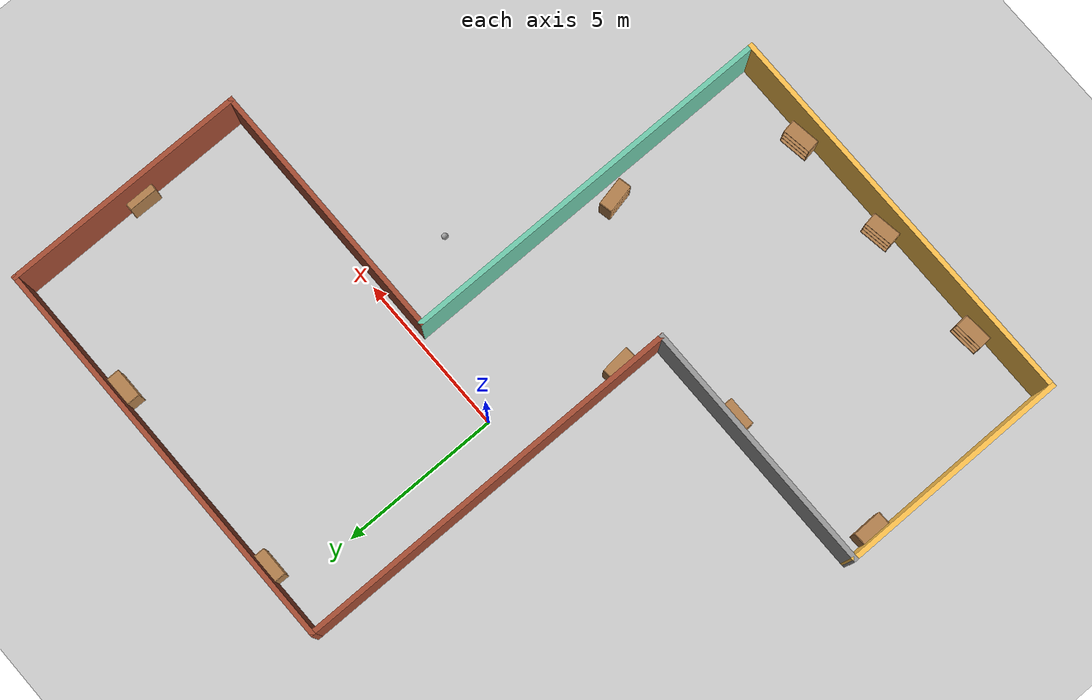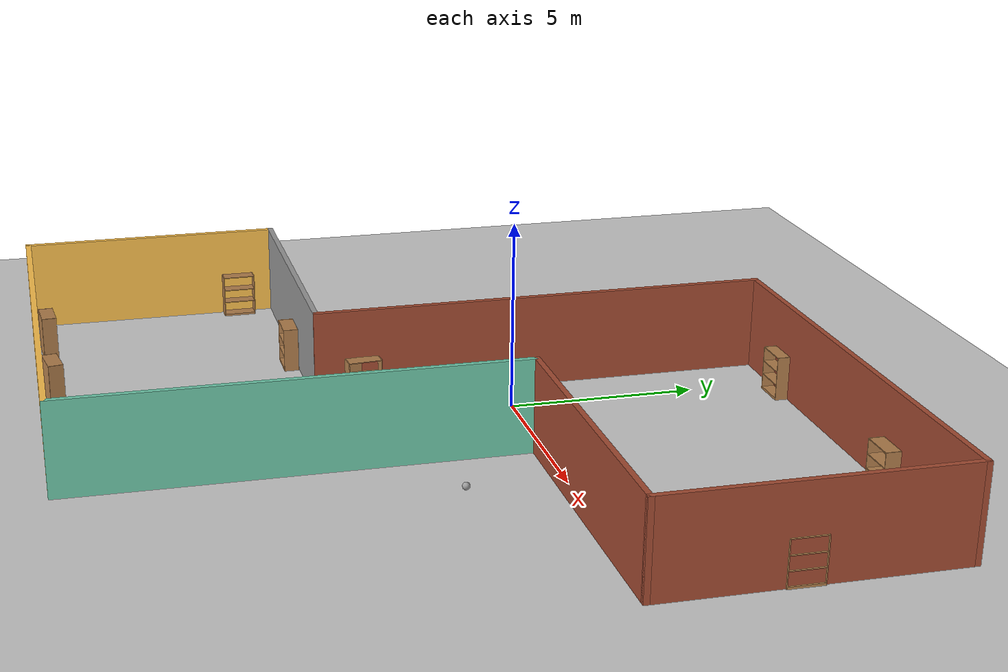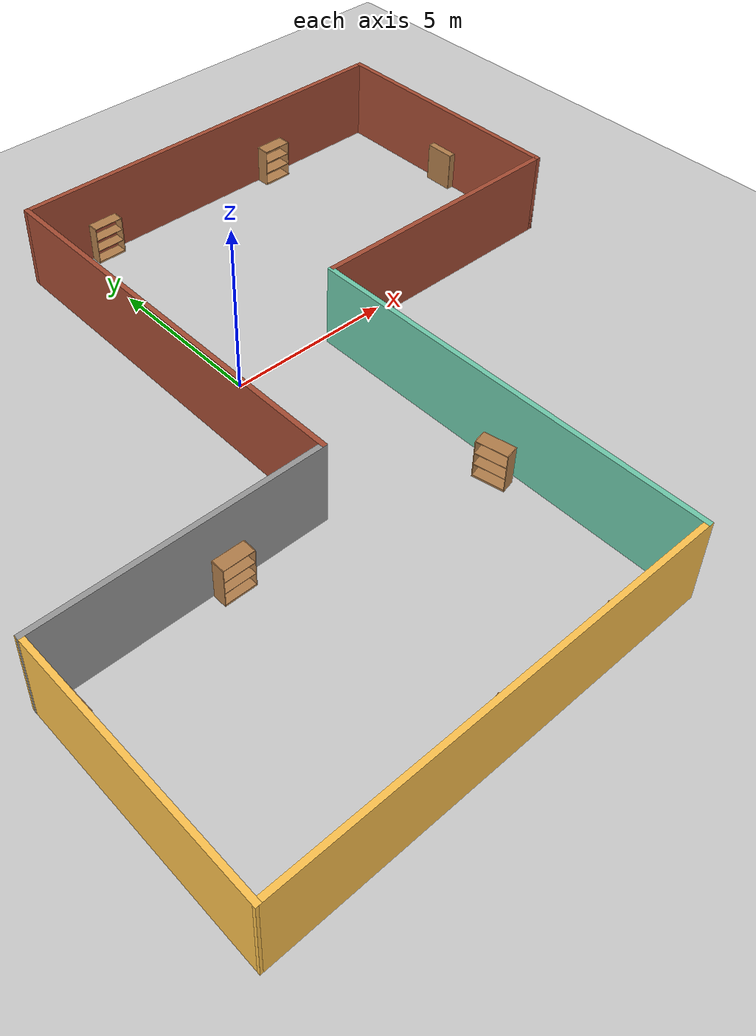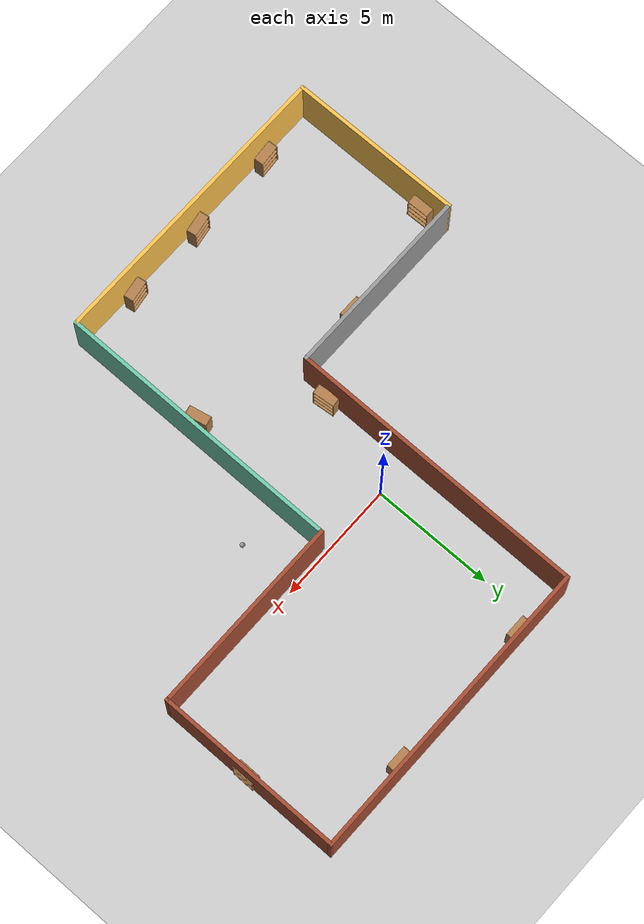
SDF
<sdf version="1.6">
 <world name="default">
  <plugin name="welcome_message" filename="libwelcome_message.so"/>
  <light name="sun" type="directional">
   <pose>0 0 10 0 -0 0</pose>
   <diffuse>0.8 0.8 0.8 1</diffuse>
   <specular>0.2 0.2 0.2 1</specular>
   <attenuation>
    <range>1000</range>
    <constant>0.9</constant>
    <linear>0.01</linear>
    <quadratic>0.001</quadratic>
   </attenuation>
   <direction>-0.5 0.1 -0.9</direction>
  </light>
  <model name="ground_plane">
   <static>1</static>
   <link name="link">
    <collision name="collision">
     <geometry><plane><normal>0 0 1</normal><size>100 100</size></plane></geometry>
     <surface>
      <contact><collide_bitmask>65535</collide_bitmask></contact>
      <friction><ode><mu>100</mu><mu2>50</mu2></ode></friction>
     </surface>
    </collision>
    <visual name="visual">
     <cast_shadows>0</cast_shadows>
     <geometry><plane><normal>0 0 1</normal><size>100 100</size></plane></geometry>
     <material>
      <script><uri>file://media/materials/scripts/gazebo.material</uri><name>Gazebo/Grey</name></script>
     </material>
    </visual>
   </link>
  </model>
  <gravity>0 0 -9.8</gravity>
  <magnetic_field>6e-06 2.3e-05 -4.2e-05</magnetic_field>
  <atmosphere type="adiabatic"/>
  <physics name="default_physics" default="0" type="ode">
   <max_step_size>0.001</max_step_size>
   <real_time_factor>1</real_time_factor>
   <real_time_update_rate>1000</real_time_update_rate>
  </physics>
  <scene><ambient>0.4 0.4 0.4 1</ambient><background>0.7 0.7 0.7 1</background><shadows>1</shadows></scene>
  <spherical_coordinates>
   <surface_model>EARTH_WGS84</surface_model>
   <latitude_deg>0</latitude_deg>
   <longitude_deg>0</longitude_deg>
   <elevation>0</elevation>
   <heading_deg>0</heading_deg>
  </spherical_coordinates>
  <model name="Building">
   <pose>0.87968 -2.35565 0 0 -0 0</pose>
   <link name="Wall_1">
    <collision name="Wall_1_Collision">
     <geometry><box><size>8.024 0.15 2.5</size></box></geometry>
     <pose>0 0 1.25 0 -0 0</pose>
    </collision>
    <visual name="Wall_1_Visual">
     <pose>0 0 1.25 0 -0 0</pose>
     <geometry><box><size>8.024 0.15 2.5</size></box></geometry>
     <material>
      <script><uri>file://media/materials/scripts/gazebo.material</uri><name>Gazebo/Grey</name></script>
      <ambient>1 1 1 1</ambient>
     </material>
     <meta><layer>0</layer></meta>
    </visual>
    <pose>-6.30551 -2.59086 0 0 -0 3.14159</pose>
   </link>
   <link name="Wall_2">
    <collision name="Wall_2_Collision">
     <geometry><box><size>7.285 0.15 2.5</size></box></geometry>
     <pose>0 0 1.25 0 -0 0</pose>
    </collision>
    <visual name="Wall_2_Visual">
     <pose>0 0 1.25 0 -0 0</pose>
     <geometry><box><size>7.285 0.15 2.5</size></box></geometry>
     <material>
      <script><uri>file://media/materials/scripts/gazebo.material</uri><name>Gazebo/Grey</name></script>
      <ambient>1 0.764706 0.305882 1</ambient>
     </material>
     <meta><layer>0</layer></meta>
    </visual>
    <pose>-10.2248 -6.15832 0 0 0 -1.56584</pose>
   </link>
   <link name="Wall_3">
    <collision name="Wall_3_Collision">
     <geometry><box><size>12.5 0.15 2.5</size></box></geometry>
     <pose>0 0 1.25 0 -0 0</pose>
    </collision>
    <visual name="Wall_3_Visual">
     <pose>0 0 1.25 0 -0 0</pose>
     <geometry><box><size>12.5 0.15 2.5</size></box></geometry>
     <material>
      <script><uri>file://media/materials/scripts/gazebo.material</uri><name>Gazebo/Grey</name></script>
      <ambient>1 0.764706 0.305882 1</ambient>
     </material>
     <meta><layer>0</layer></meta>
    </visual>
    <pose>-4.03216 -9.72578 0 0 -0 0</pose>
   </link>
   <link name="Wall_4">
    <collision name="Wall_4_Collision">
     <geometry><box><size>12 0.15 2.5</size></box></geometry>
     <pose>0 0 1.25 0 -0 0</pose>
    </collision>
    <visual name="Wall_4_Visual">
     <pose>0 0 1.25 0 -0 0</pose>
     <geometry><box><size>12 0.15 2.5</size></box></geometry>
     <material>
      <script><uri>file://media/materials/scripts/gazebo.material</uri><name>Gazebo/Grey</name></script>
      <ambient>0.435294 0.796078 0.67451 1</ambient>
     </material>
     <meta><layer>0</layer></meta>
    </visual>
    <pose>2.14284 -3.80078 0 0 -0 1.5708</pose>
   </link>
   <link name="Wall_5">
    <collision name="Wall_5_Collision">
     <geometry><box><size>8.25 0.15 2.5</size></box></geometry>
     <pose>0 0 1.25 0 -0 0</pose>
    </collision>
    <visual name="Wall_5_Visual">
     <pose>0 0 1.25 0 -0 0</pose>
     <geometry><box><size>8.25 0.15 2.5</size></box></geometry>
     <material>
      <script><uri>file://media/materials/scripts/gazebo.material</uri><name>Gazebo/Bricks</name></script>
      <ambient>1 1 1 1</ambient>
     </material>
     <meta><layer>0</layer></meta>
    </visual>
    <pose>6.19284 2.12422 0 0 -0 0</pose>
   </link>
   <link name="Wall_6">
    <collision name="Wall_6_Collision">
     <geometry><box><size>7.75 0.15 2.5</size></box></geometry>
     <pose>0 0 1.25 0 -0 0</pose>
    </collision>
    <visual name="Wall_6_Visual">
     <pose>0 0 1.25 0 -0 0</pose>
     <geometry><box><size>7.75 0.15 2.5</size></box></geometry>
     <material>
      <script><uri>file://media/materials/scripts/gazebo.material</uri><name>Gazebo/Bricks</name></script>
      <ambient>1 0.764706 0.305882 1</ambient>
     </material>
     <meta><layer>0</layer></meta>
    </visual>
    <pose>10.2428 5.92422 0 0 -0 1.5708</pose>
   </link>
   <link name="Wall_7">
    <collision name="Wall_7_Collision">
     <geometry><box><size>12.7504 0.15 2.5</size></box></geometry>
     <pose>0 0 1.25 0 -0 0</pose>
    </collision>
    <visual name="Wall_7_Visual">
     <pose>0 0 1.25 0 -0 0</pose>
     <geometry><box><size>12.7504 0.15 2.5</size></box></geometry>
     <material>
      <script><uri>file://media/materials/scripts/gazebo.material</uri><name>Gazebo/Bricks</name></script>
      <ambient>1 1 1 1</ambient>
     </material>
     <meta><layer>0</layer></meta>
    </visual>
    <pose>3.94267 9.72518 0 0 -0 3.14144</pose>
   </link>
   <link name="Wall_8">
    <collision name="Wall_8_Collision">
     <geometry><box><size>12.462 0.15 2.5</size></box></geometry>
     <pose>0 0 1.25 0 -0 0</pose>
    </collision>
    <visual name="Wall_8_Visual">
     <pose>0 0 1.25 0 -0 0</pose>
     <geometry><box><size>12.462 0.15 2.5</size></box></geometry>
     <material>
      <script><uri>file://media/materials/scripts/gazebo.material</uri><name>Gazebo/Bricks</name></script>
      <ambient>1 1 1 1</ambient>
     </material>
     <meta><layer>0</layer></meta>
    </visual>
    <pose>-2.35751 3.57013 0 0 0 -1.5708</pose>
   </link>
   <static>1</static>
  </model>
  <model name="bookshelf">
   <static>1</static>
   <link name="link">
    <inertial><mass>1</mass></inertial>
    <collision name="back">
     <pose>0 0.005 0.6 0 -0 0</pose>
     <geometry><box><size>0.9 0.01 1.2</size></box></geometry>
    </collision>
    <visual name="visual1">
     <pose>0 0.005 0.6 0 -0 0</pose>
     <geometry><box><size>0.9 0.01 1.2</size></box></geometry>
     <material>
      <script><uri>file://media/materials/scripts/gazebo.material</uri><name>Gazebo/Wood</name></script>
     </material>
    </visual>
    <collision name="left_side">
     <pose>0.45 -0.195 0.6 0 -0 0</pose>
     <geometry><box><size>0.02 0.4 1.2</size></box></geometry>
    </collision>
    <visual name="visual2">
     <pose>0.45 -0.195 0.6 0 -0 0</pose>
     <geometry><box><size>0.02 0.4 1.2</size></box></geometry>
     <material>
      <script><uri>file://media/materials/scripts/gazebo.material</uri><name>Gazebo/Wood</name></script>
     </material>
    </visual>
    <collision name="right_side">
     <pose>-0.45 -0.195 0.6 0 -0 0</pose>
     <geometry><box><size>0.02 0.4 1.2</size></box></geometry>
    </collision>
    <visual name="visual3">
     <pose>-0.45 -0.195 0.6 0 -0 0</pose>
     <geometry><box><size>0.02 0.4 1.2</size></box></geometry>
     <material>
      <script><uri>file://media/materials/scripts/gazebo.material</uri><name>Gazebo/Wood</name></script>
     </material>
    </visual>
    <collision name="bottom">
     <pose>0 -0.195 0.03 0 -0 0</pose>
     <geometry><box><size>0.88 0.4 0.06</size></box></geometry>
    </collision>
    <visual name="visual4">
     <pose>0 -0.195 0.03 0 -0 0</pose>
     <geometry><box><size>0.88 0.4 0.06</size></box></geometry>
     <material>
      <script><uri>file://media/materials/scripts/gazebo.material</uri><name>Gazebo/Wood</name></script>
     </material>
    </visual>
    <collision name="top">
     <pose>0 -0.195 1.19 0 -0 0</pose>
     <geometry><box><size>0.88 0.4 0.02</size></box></geometry>
    </collision>
    <visual name="visual5">
     <pose>0 -0.195 1.19 0 -0 0</pose>
     <geometry><box><size>0.88 0.4 0.02</size></box></geometry>
     <material>
      <script><uri>file://media/materials/scripts/gazebo.material</uri><name>Gazebo/Wood</name></script>
     </material>
    </visual>
    <collision name="low_shelf">
     <pose>0 -0.195 0.43 0 -0 0</pose>
     <geometry><box><size>0.88 0.4 0.02</size></box></geometry>
    </collision>
    <visual name="visual6">
     <pose>0 -0.195 0.43 0 -0 0</pose>
     <geometry><box><size>0.88 0.4 0.02</size></box></geometry>
     <material>
      <script><uri>file://media/materials/scripts/gazebo.material</uri><name>Gazebo/Wood</name></script>
     </material>
    </visual>
    <collision name="high_shelf">
     <pose>0 -0.195 0.8 0 -0 0</pose>
     <geometry><box><size>0.88 0.4 0.02</size></box></geometry>
    </collision>
    <visual name="visual7">
     <pose>0 -0.195 0.8 0 -0 0</pose>
     <geometry><box><size>0.88 0.4 0.02</size></box></geometry>
     <material>
      <script><uri>file://media/materials/scripts/gazebo.material</uri><name>Gazebo/Wood</name></script>
     </material>
    </visual>
   </link>
   <pose>-4.36599 -5.04739 0 0 -0 0</pose>
  </model>
  <model name="my_ball">
   <link name="link_0">
    <inertial>
     <mass>1</mass>
     <inertia><ixx>0.1</ixx><ixy>0</ixy><ixz>0</ixz><iyy>0.1</iyy><iyz>0</iyz><izz>0.1</izz></inertia>
    </inertial>
    <visual name="visual">
     <geometry><sphere><radius>0.1</radius></sphere></geometry>
     <material>
      <lighting>1</lighting>
      <script><uri>file://media/materials/scripts/gazebo.material</uri><name>Gazebo/Grey</name></script>
      <shader type="pixel"><normal_map>__default__</normal_map></shader>
      <ambient>1 1 1 1</ambient>
      <diffuse>1 1 1 1</diffuse>
      <specular>1 1 1 1</specular>
      <emissive>1 1 1 1</emissive>
     </material>
    </visual>
    <collision name="collision">
     <geometry><sphere><radius>0.1</radius></sphere></geometry>
     <surface>
      <friction>
       <ode><mu>1</mu><mu2>1</mu2><fdir1>0 0 0</fdir1><slip1>0</slip1><slip2>0</slip2></ode>
       <torsional>
        <coefficient>1</coefficient>
        <patch_radius>0</patch_radius>
        <surface_radius>0</surface_radius>
        <use_patch_radius>1</use_patch_radius>
        <ode><slip>0</slip></ode>
       </torsional>
      </friction>
      <bounce><restitution_coefficient>0</restitution_coefficient><threshold>1e+06</threshold></bounce>
      <contact>
       <collide_without_contact>0</collide_without_contact>
       <collide_without_contact_bitmask>1</collide_without_contact_bitmask>
       <collide_bitmask>1</collide_bitmask>
       <ode>
        <soft_cfm>0</soft_cfm>
        <soft_erp>0.2</soft_erp>
        <kp>1e+13</kp>
        <kd>1</kd>
        <max_vel>0.01</max_vel>
        <min_depth>0</min_depth>
       </ode>
       <bullet>
        <split_impulse>1</split_impulse>
        <split_impulse_penetration_threshold>-0.01</split_impulse_penetration_threshold>
        <soft_cfm>0</soft_cfm>
        <soft_erp>0.2</soft_erp>
        <kp>1e+13</kp>
        <kd>1</kd>
       </bullet>
      </contact>
     </surface>
    </collision>
   </link>
   <static>0</static>
   <pose>4.81134 -2.46501 0.1 0 -0 0</pose>
  </model>
  <model name="bookshelf_clone">
   <static>1</static>
   <link name="link">
    <inertial><mass>1</mass></inertial>
    <collision name="back">
     <pose>0 0.005 0.6 0 -0 0</pose>
     <geometry><box><size>0.9 0.01 1.2</size></box></geometry>
    </collision>
    <visual name="visual1">
     <pose>0 0.005 0.6 0 -0 0</pose>
     <geometry><box><size>0.9 0.01 1.2</size></box></geometry>
     <material>
      <script><uri>file://media/materials/scripts/gazebo.material</uri><name>Gazebo/Wood</name></script>
     </material>
    </visual>
    <collision name="left_side">
     <pose>0.45 -0.195 0.6 0 -0 0</pose>
     <geometry><box><size>0.02 0.4 1.2</size></box></geometry>
    </collision>
    <visual name="visual2">
     <pose>0.45 -0.195 0.6 0 -0 0</pose>
     <geometry><box><size>0.02 0.4 1.2</size></box></geometry>
     <material>
      <script><uri>file://media/materials/scripts/gazebo.material</uri><name>Gazebo/Wood</name></script>
     </material>
    </visual>
    <collision name="right_side">
     <pose>-0.45 -0.195 0.6 0 -0 0</pose>
     <geometry><box><size>0.02 0.4 1.2</size></box></geometry>
    </collision>
    <visual name="visual3">
     <pose>-0.45 -0.195 0.6 0 -0 0</pose>
     <geometry><box><size>0.02 0.4 1.2</size></box></geometry>
     <material>
      <script><uri>file://media/materials/scripts/gazebo.material</uri><name>Gazebo/Wood</name></script>
     </material>
    </visual>
    <collision name="bottom">
     <pose>0 -0.195 0.03 0 -0 0</pose>
     <geometry><box><size>0.88 0.4 0.06</size></box></geometry>
    </collision>
    <visual name="visual4">
     <pose>0 -0.195 0.03 0 -0 0</pose>
     <geometry><box><size>0.88 0.4 0.06</size></box></geometry>
     <material>
      <script><uri>file://media/materials/scripts/gazebo.material</uri><name>Gazebo/Wood</name></script>
     </material>
    </visual>
    <collision name="top">
     <pose>0 -0.195 1.19 0 -0 0</pose>
     <geometry><box><size>0.88 0.4 0.02</size></box></geometry>
    </collision>
    <visual name="visual5">
     <pose>0 -0.195 1.19 0 -0 0</pose>
     <geometry><box><size>0.88 0.4 0.02</size></box></geometry>
     <material>
      <script><uri>file://media/materials/scripts/gazebo.material</uri><name>Gazebo/Wood</name></script>
     </material>
    </visual>
    <collision name="low_shelf">
     <pose>0 -0.195 0.43 0 -0 0</pose>
     <geometry><box><size>0.88 0.4 0.02</size></box></geometry>
    </collision>
    <visual name="visual6">
     <pose>0 -0.195 0.43 0 -0 0</pose>
     <geometry><box><size>0.88 0.4 0.02</size></box></geometry>
     <material>
      <script><uri>file://media/materials/scripts/gazebo.material</uri><name>Gazebo/Wood</name></script>
     </material>
    </visual>
    <collision name="high_shelf">
     <pose>0 -0.195 0.8 0 -0 0</pose>
     <geometry><box><size>0.88 0.4 0.02</size></box></geometry>
    </collision>
    <visual name="visual7">
     <pose>0 -0.195 0.8 0 -0 0</pose>
     <geometry><box><size>0.88 0.4 0.02</size></box></geometry>
     <material>
      <script><uri>file://media/materials/scripts/gazebo.material</uri><name>Gazebo/Wood</name></script>
     </material>
    </visual>
   </link>
   <pose>0.78392 7.34985 0 0 -0 0</pose>
  </model>
  <model name="bookshelf_clone_0">
   <static>1</static>
   <link name="link">
    <inertial><mass>1</mass></inertial>
    <collision name="back">
     <pose>0 0.005 0.6 0 -0 0</pose>
     <geometry><box><size>0.9 0.01 1.2</size></box></geometry>
    </collision>
    <visual name="visual1">
     <pose>0 0.005 0.6 0 -0 0</pose>
     <geometry><box><size>0.9 0.01 1.2</size></box></geometry>
     <material>
      <script><uri>file://media/materials/scripts/gazebo.material</uri><name>Gazebo/Wood</name></script>
     </material>
    </visual>
    <collision name="left_side">
     <pose>0.45 -0.195 0.6 0 -0 0</pose>
     <geometry><box><size>0.02 0.4 1.2</size></box></geometry>
    </collision>
    <visual name="visual2">
     <pose>0.45 -0.195 0.6 0 -0 0</pose>
     <geometry><box><size>0.02 0.4 1.2</size></box></geometry>
     <material>
      <script><uri>file://media/materials/scripts/gazebo.material</uri><name>Gazebo/Wood</name></script>
     </material>
    </visual>
    <collision name="right_side">
     <pose>-0.45 -0.195 0.6 0 -0 0</pose>
     <geometry><box><size>0.02 0.4 1.2</size></box></geometry>
    </collision>
    <visual name="visual3">
     <pose>-0.45 -0.195 0.6 0 -0 0</pose>
     <geometry><box><size>0.02 0.4 1.2</size></box></geometry>
     <material>
      <script><uri>file://media/materials/scripts/gazebo.material</uri><name>Gazebo/Wood</name></script>
     </material>
    </visual>
    <collision name="bottom">
     <pose>0 -0.195 0.03 0 -0 0</pose>
     <geometry><box><size>0.88 0.4 0.06</size></box></geometry>
    </collision>
    <visual name="visual4">
     <pose>0 -0.195 0.03 0 -0 0</pose>
     <geometry><box><size>0.88 0.4 0.06</size></box></geometry>
     <material>
      <script><uri>file://media/materials/scripts/gazebo.material</uri><name>Gazebo/Wood</name></script>
     </material>
    </visual>
    <collision name="top">
     <pose>0 -0.195 1.19 0 -0 0</pose>
     <geometry><box><size>0.88 0.4 0.02</size></box></geometry>
    </collision>
    <visual name="visual5">
     <pose>0 -0.195 1.19 0 -0 0</pose>
     <geometry><box><size>0.88 0.4 0.02</size></box></geometry>
     <material>
      <script><uri>file://media/materials/scripts/gazebo.material</uri><name>Gazebo/Wood</name></script>
     </material>
    </visual>
    <collision name="low_shelf">
     <pose>0 -0.195 0.43 0 -0 0</pose>
     <geometry><box><size>0.88 0.4 0.02</size></box></geometry>
    </collision>
    <visual name="visual6">
     <pose>0 -0.195 0.43 0 -0 0</pose>
     <geometry><box><size>0.88 0.4 0.02</size></box></geometry>
     <material>
      <script><uri>file://media/materials/scripts/gazebo.material</uri><name>Gazebo/Wood</name></script>
     </material>
    </visual>
    <collision name="high_shelf">
     <pose>0 -0.195 0.8 0 -0 0</pose>
     <geometry><box><size>0.88 0.4 0.02</size></box></geometry>
    </collision>
    <visual name="visual7">
     <pose>0 -0.195 0.8 0 -0 0</pose>
     <geometry><box><size>0.88 0.4 0.02</size></box></geometry>
     <material>
      <script><uri>file://media/materials/scripts/gazebo.material</uri><name>Gazebo/Wood</name></script>
     </material>
    </visual>
   </link>
   <pose>7.1489 7.27555 0 0 -0 0</pose>
  </model>
  <model name="bookshelf_clone_1">
   <static>1</static>
   <link name="link">
    <inertial><mass>1</mass></inertial>
    <collision name="back">
     <pose>0 0.005 0.6 0 -0 0</pose>
     <geometry><box><size>0.9 0.01 1.2</size></box></geometry>
    </collision>
    <visual name="visual1">
     <pose>0 0.005 0.6 0 -0 0</pose>
     <geometry><box><size>0.9 0.01 1.2</size></box></geometry>
     <material>
      <script><uri>file://media/materials/scripts/gazebo.material</uri><name>Gazebo/Wood</name></script>
     </material>
    </visual>
    <collision name="left_side">
     <pose>0.45 -0.195 0.6 0 -0 0</pose>
     <geometry><box><size>0.02 0.4 1.2</size></box></geometry>
    </collision>
    <visual name="visual2">
     <pose>0.45 -0.195 0.6 0 -0 0</pose>
     <geometry><box><size>0.02 0.4 1.2</size></box></geometry>
     <material>
      <script><uri>file://media/materials/scripts/gazebo.material</uri><name>Gazebo/Wood</name></script>
     </material>
    </visual>
    <collision name="right_side">
     <pose>-0.45 -0.195 0.6 0 -0 0</pose>
     <geometry><box><size>0.02 0.4 1.2</size></box></geometry>
    </collision>
    <visual name="visual3">
     <pose>-0.45 -0.195 0.6 0 -0 0</pose>
     <geometry><box><size>0.02 0.4 1.2</size></box></geometry>
     <material>
      <script><uri>file://media/materials/scripts/gazebo.material</uri><name>Gazebo/Wood</name></script>
     </material>
    </visual>
    <collision name="bottom">
     <pose>0 -0.195 0.03 0 -0 0</pose>
     <geometry><box><size>0.88 0.4 0.06</size></box></geometry>
    </collision>
    <visual name="visual4">
     <pose>0 -0.195 0.03 0 -0 0</pose>
     <geometry><box><size>0.88 0.4 0.06</size></box></geometry>
     <material>
      <script><uri>file://media/materials/scripts/gazebo.material</uri><name>Gazebo/Wood</name></script>
     </material>
    </visual>
    <collision name="top">
     <pose>0 -0.195 1.19 0 -0 0</pose>
     <geometry><box><size>0.88 0.4 0.02</size></box></geometry>
    </collision>
    <visual name="visual5">
     <pose>0 -0.195 1.19 0 -0 0</pose>
     <geometry><box><size>0.88 0.4 0.02</size></box></geometry>
     <material>
      <script><uri>file://media/materials/scripts/gazebo.material</uri><name>Gazebo/Wood</name></script>
     </material>
    </visual>
    <collision name="low_shelf">
     <pose>0 -0.195 0.43 0 -0 0</pose>
     <geometry><box><size>0.88 0.4 0.02</size></box></geometry>
    </collision>
    <visual name="visual6">
     <pose>0 -0.195 0.43 0 -0 0</pose>
     <geometry><box><size>0.88 0.4 0.02</size></box></geometry>
     <material>
      <script><uri>file://media/materials/scripts/gazebo.material</uri><name>Gazebo/Wood</name></script>
     </material>
    </visual>
    <collision name="high_shelf">
     <pose>0 -0.195 0.8 0 -0 0</pose>
     <geometry><box><size>0.88 0.4 0.02</size></box></geometry>
    </collision>
    <visual name="visual7">
     <pose>0 -0.195 0.8 0 -0 0</pose>
     <geometry><box><size>0.88 0.4 0.02</size></box></geometry>
     <material>
      <script><uri>file://media/materials/scripts/gazebo.material</uri><name>Gazebo/Wood</name></script>
     </material>
    </visual>
   </link>
   <pose>-6.83486 -11.9255 0 0 0 -3.06217</pose>
  </model>
  <model name="bookshelf_clone_2">
   <static>1</static>
   <link name="link">
    <inertial><mass>1</mass></inertial>
    <collision name="back">
     <pose>0 0.005 0.6 0 -0 0</pose>
     <geometry><box><size>0.9 0.01 1.2</size></box></geometry>
    </collision>
    <visual name="visual1">
     <pose>0 0.005 0.6 0 -0 0</pose>
     <geometry><box><size>0.9 0.01 1.2</size></box></geometry>
     <material>
      <script><uri>file://media/materials/scripts/gazebo.material</uri><name>Gazebo/Wood</name></script>
     </material>
    </visual>
    <collision name="left_side">
     <pose>0.45 -0.195 0.6 0 -0 0</pose>
     <geometry><box><size>0.02 0.4 1.2</size></box></geometry>
    </collision>
    <visual name="visual2">
     <pose>0.45 -0.195 0.6 0 -0 0</pose>
     <geometry><box><size>0.02 0.4 1.2</size></box></geometry>
     <material>
      <script><uri>file://media/materials/scripts/gazebo.material</uri><name>Gazebo/Wood</name></script>
     </material>
    </visual>
    <collision name="right_side">
     <pose>-0.45 -0.195 0.6 0 -0 0</pose>
     <geometry><box><size>0.02 0.4 1.2</size></box></geometry>
    </collision>
    <visual name="visual3">
     <pose>-0.45 -0.195 0.6 0 -0 0</pose>
     <geometry><box><size>0.02 0.4 1.2</size></box></geometry>
     <material>
      <script><uri>file://media/materials/scripts/gazebo.material</uri><name>Gazebo/Wood</name></script>
     </material>
    </visual>
    <collision name="bottom">
     <pose>0 -0.195 0.03 0 -0 0</pose>
     <geometry><box><size>0.88 0.4 0.06</size></box></geometry>
    </collision>
    <visual name="visual4">
     <pose>0 -0.195 0.03 0 -0 0</pose>
     <geometry><box><size>0.88 0.4 0.06</size></box></geometry>
     <material>
      <script><uri>file://media/materials/scripts/gazebo.material</uri><name>Gazebo/Wood</name></script>
     </material>
    </visual>
    <collision name="top">
     <pose>0 -0.195 1.19 0 -0 0</pose>
     <geometry><box><size>0.88 0.4 0.02</size></box></geometry>
    </collision>
    <visual name="visual5">
     <pose>0 -0.195 1.19 0 -0 0</pose>
     <geometry><box><size>0.88 0.4 0.02</size></box></geometry>
     <material>
      <script><uri>file://media/materials/scripts/gazebo.material</uri><name>Gazebo/Wood</name></script>
     </material>
    </visual>
    <collision name="low_shelf">
     <pose>0 -0.195 0.43 0 -0 0</pose>
     <geometry><box><size>0.88 0.4 0.02</size></box></geometry>
    </collision>
    <visual name="visual6">
     <pose>0 -0.195 0.43 0 -0 0</pose>
     <geometry><box><size>0.88 0.4 0.02</size></box></geometry>
     <material>
      <script><uri>file://media/materials/scripts/gazebo.material</uri><name>Gazebo/Wood</name></script>
     </material>
    </visual>
    <collision name="high_shelf">
     <pose>0 -0.195 0.8 0 -0 0</pose>
     <geometry><box><size>0.88 0.4 0.02</size></box></geometry>
    </collision>
    <visual name="visual7">
     <pose>0 -0.195 0.8 0 -0 0</pose>
     <geometry><box><size>0.88 0.4 0.02</size></box></geometry>
     <material>
      <script><uri>file://media/materials/scripts/gazebo.material</uri><name>Gazebo/Wood</name></script>
     </material>
    </visual>
   </link>
   <pose>-1.40225 -3.74872 0 0 -0 1.66479</pose>
  </model>
  <model name="bookshelf_clone_1_clone">
   <static>1</static>
   <link name="link">
    <inertial><mass>1</mass></inertial>
    <collision name="back">
     <pose>0 0.005 0.6 0 -0 0</pose>
     <geometry><box><size>0.9 0.01 1.2</size></box></geometry>
    </collision>
    <visual name="visual1">
     <pose>0 0.005 0.6 0 -0 0</pose>
     <geometry><box><size>0.9 0.01 1.2</size></box></geometry>
     <material>
      <script><uri>file://media/materials/scripts/gazebo.material</uri><name>Gazebo/Wood</name></script>
     </material>
    </visual>
    <collision name="left_side">
     <pose>0.45 -0.195 0.6 0 -0 0</pose>
     <geometry><box><size>0.02 0.4 1.2</size></box></geometry>
    </collision>
    <visual name="visual2">
     <pose>0.45 -0.195 0.6 0 -0 0</pose>
     <geometry><box><size>0.02 0.4 1.2</size></box></geometry>
     <material>
      <script><uri>file://media/materials/scripts/gazebo.material</uri><name>Gazebo/Wood</name></script>
     </material>
    </visual>
    <collision name="right_side">
     <pose>-0.45 -0.195 0.6 0 -0 0</pose>
     <geometry><box><size>0.02 0.4 1.2</size></box></geometry>
    </collision>
    <visual name="visual3">
     <pose>-0.45 -0.195 0.6 0 -0 0</pose>
     <geometry><box><size>0.02 0.4 1.2</size></box></geometry>
     <material>
      <script><uri>file://media/materials/scripts/gazebo.material</uri><name>Gazebo/Wood</name></script>
     </material>
    </visual>
    <collision name="bottom">
     <pose>0 -0.195 0.03 0 -0 0</pose>
     <geometry><box><size>0.88 0.4 0.06</size></box></geometry>
    </collision>
    <visual name="visual4">
     <pose>0 -0.195 0.03 0 -0 0</pose>
     <geometry><box><size>0.88 0.4 0.06</size></box></geometry>
     <material>
      <script><uri>file://media/materials/scripts/gazebo.material</uri><name>Gazebo/Wood</name></script>
     </material>
    </visual>
    <collision name="top">
     <pose>0 -0.195 1.19 0 -0 0</pose>
     <geometry><box><size>0.88 0.4 0.02</size></box></geometry>
    </collision>
    <visual name="visual5">
     <pose>0 -0.195 1.19 0 -0 0</pose>
     <geometry><box><size>0.88 0.4 0.02</size></box></geometry>
     <material>
      <script><uri>file://media/materials/scripts/gazebo.material</uri><name>Gazebo/Wood</name></script>
     </material>
    </visual>
    <collision name="low_shelf">
     <pose>0 -0.195 0.43 0 -0 0</pose>
     <geometry><box><size>0.88 0.4 0.02</size></box></geometry>
    </collision>
    <visual name="visual6">
     <pose>0 -0.195 0.43 0 -0 0</pose>
     <geometry><box><size>0.88 0.4 0.02</size></box></geometry>
     <material>
      <script><uri>file://media/materials/scripts/gazebo.material</uri><name>Gazebo/Wood</name></script>
     </material>
    </visual>
    <collision name="high_shelf">
     <pose>0 -0.195 0.8 0 -0 0</pose>
     <geometry><box><size>0.88 0.4 0.02</size></box></geometry>
    </collision>
    <visual name="visual7">
     <pose>0 -0.195 0.8 0 -0 0</pose>
     <geometry><box><size>0.88 0.4 0.02</size></box></geometry>
     <material>
      <script><uri>file://media/materials/scripts/gazebo.material</uri><name>Gazebo/Wood</name></script>
     </material>
    </visual>
   </link>
   <pose>-3.04243 -11.9264 0 0 0 -2.98169</pose>
  </model>
  <model name="bookshelf_clone_1_clone_0">
   <static>1</static>
   <link name="link">
    <inertial><mass>1</mass></inertial>
    <collision name="back">
     <pose>0 0.005 0.6 0 -0 0</pose>
     <geometry><box><size>0.9 0.01 1.2</size></box></geometry>
    </collision>
    <visual name="visual1">
     <pose>0 0.005 0.6 0 -0 0</pose>
     <geometry><box><size>0.9 0.01 1.2</size></box></geometry>
     <material>
      <script><uri>file://media/materials/scripts/gazebo.material</uri><name>Gazebo/Wood</name></script>
     </material>
    </visual>
    <collision name="left_side">
     <pose>0.45 -0.195 0.6 0 -0 0</pose>
     <geometry><box><size>0.02 0.4 1.2</size></box></geometry>
    </collision>
    <visual name="visual2">
     <pose>0.45 -0.195 0.6 0 -0 0</pose>
     <geometry><box><size>0.02 0.4 1.2</size></box></geometry>
     <material>
      <script><uri>file://media/materials/scripts/gazebo.material</uri><name>Gazebo/Wood</name></script>
     </material>
    </visual>
    <collision name="right_side">
     <pose>-0.45 -0.195 0.6 0 -0 0</pose>
     <geometry><box><size>0.02 0.4 1.2</size></box></geometry>
    </collision>
    <visual name="visual3">
     <pose>-0.45 -0.195 0.6 0 -0 0</pose>
     <geometry><box><size>0.02 0.4 1.2</size></box></geometry>
     <material>
      <script><uri>file://media/materials/scripts/gazebo.material</uri><name>Gazebo/Wood</name></script>
     </material>
    </visual>
    <collision name="bottom">
     <pose>0 -0.195 0.03 0 -0 0</pose>
     <geometry><box><size>0.88 0.4 0.06</size></box></geometry>
    </collision>
    <visual name="visual4">
     <pose>0 -0.195 0.03 0 -0 0</pose>
     <geometry><box><size>0.88 0.4 0.06</size></box></geometry>
     <material>
      <script><uri>file://media/materials/scripts/gazebo.material</uri><name>Gazebo/Wood</name></script>
     </material>
    </visual>
    <collision name="top">
     <pose>0 -0.195 1.19 0 -0 0</pose>
     <geometry><box><size>0.88 0.4 0.02</size></box></geometry>
    </collision>
    <visual name="visual5">
     <pose>0 -0.195 1.19 0 -0 0</pose>
     <geometry><box><size>0.88 0.4 0.02</size></box></geometry>
     <material>
      <script><uri>file://media/materials/scripts/gazebo.material</uri><name>Gazebo/Wood</name></script>
     </material>
    </visual>
    <collision name="low_shelf">
     <pose>0 -0.195 0.43 0 -0 0</pose>
     <geometry><box><size>0.88 0.4 0.02</size></box></geometry>
    </collision>
    <visual name="visual6">
     <pose>0 -0.195 0.43 0 -0 0</pose>
     <geometry><box><size>0.88 0.4 0.02</size></box></geometry>
     <material>
      <script><uri>file://media/materials/scripts/gazebo.material</uri><name>Gazebo/Wood</name></script>
     </material>
    </visual>
    <collision name="high_shelf">
     <pose>0 -0.195 0.8 0 -0 0</pose>
     <geometry><box><size>0.88 0.4 0.02</size></box></geometry>
    </collision>
    <visual name="visual7">
     <pose>0 -0.195 0.8 0 -0 0</pose>
     <geometry><box><size>0.88 0.4 0.02</size></box></geometry>
     <material>
      <script><uri>file://media/materials/scripts/gazebo.material</uri><name>Gazebo/Wood</name></script>
     </material>
    </visual>
   </link>
   <pose>0.395632 -11.9261 0 0 0 -2.98895</pose>
  </model>
  <model name="bookshelf_clone_1_clone_1">
   <static>1</static>
   <link name="link">
    <inertial><mass>1</mass></inertial>
    <collision name="back">
     <pose>0 0.005 0.6 0 -0 0</pose>
     <geometry><box><size>0.9 0.01 1.2</size></box></geometry>
    </collision>
    <visual name="visual1">
     <pose>0 0.005 0.6 0 -0 0</pose>
     <geometry><box><size>0.9 0.01 1.2</size></box></geometry>
     <material>
      <script><uri>file://media/materials/scripts/gazebo.material</uri><name>Gazebo/Wood</name></script>
     </material>
    </visual>
    <collision name="left_side">
     <pose>0.45 -0.195 0.6 0 -0 0</pose>
     <geometry><box><size>0.02 0.4 1.2</size></box></geometry>
    </collision>
    <visual name="visual2">
     <pose>0.45 -0.195 0.6 0 -0 0</pose>
     <geometry><box><size>0.02 0.4 1.2</size></box></geometry>
     <material>
      <script><uri>file://media/materials/scripts/gazebo.material</uri><name>Gazebo/Wood</name></script>
     </material>
    </visual>
    <collision name="right_side">
     <pose>-0.45 -0.195 0.6 0 -0 0</pose>
     <geometry><box><size>0.02 0.4 1.2</size></box></geometry>
    </collision>
    <visual name="visual3">
     <pose>-0.45 -0.195 0.6 0 -0 0</pose>
     <geometry><box><size>0.02 0.4 1.2</size></box></geometry>
     <material>
      <script><uri>file://media/materials/scripts/gazebo.material</uri><name>Gazebo/Wood</name></script>
     </material>
    </visual>
    <collision name="bottom">
     <pose>0 -0.195 0.03 0 -0 0</pose>
     <geometry><box><size>0.88 0.4 0.06</size></box></geometry>
    </collision>
    <visual name="visual4">
     <pose>0 -0.195 0.03 0 -0 0</pose>
     <geometry><box><size>0.88 0.4 0.06</size></box></geometry>
     <material>
      <script><uri>file://media/materials/scripts/gazebo.material</uri><name>Gazebo/Wood</name></script>
     </material>
    </visual>
    <collision name="top">
     <pose>0 -0.195 1.19 0 -0 0</pose>
     <geometry><box><size>0.88 0.4 0.02</size></box></geometry>
    </collision>
    <visual name="visual5">
     <pose>0 -0.195 1.19 0 -0 0</pose>
     <geometry><box><size>0.88 0.4 0.02</size></box></geometry>
     <material>
      <script><uri>file://media/materials/scripts/gazebo.material</uri><name>Gazebo/Wood</name></script>
     </material>
    </visual>
    <collision name="low_shelf">
     <pose>0 -0.195 0.43 0 -0 0</pose>
     <geometry><box><size>0.88 0.4 0.02</size></box></geometry>
    </collision>
    <visual name="visual6">
     <pose>0 -0.195 0.43 0 -0 0</pose>
     <geometry><box><size>0.88 0.4 0.02</size></box></geometry>
     <material>
      <script><uri>file://media/materials/scripts/gazebo.material</uri><name>Gazebo/Wood</name></script>
     </material>
    </visual>
    <collision name="high_shelf">
     <pose>0 -0.195 0.8 0 -0 0</pose>
     <geometry><box><size>0.88 0.4 0.02</size></box></geometry>
    </collision>
    <visual name="visual7">
     <pose>0 -0.195 0.8 0 -0 0</pose>
     <geometry><box><size>0.88 0.4 0.02</size></box></geometry>
     <material>
      <script><uri>file://media/materials/scripts/gazebo.material</uri><name>Gazebo/Wood</name></script>
     </material>
    </visual>
   </link>
   <pose>2.65237 -6.67091 0 0 -0 -1.36162</pose>
  </model>
  <model name="bookshelf_clone_1_clone_2">
   <static>1</static>
   <link name="link">
    <inertial><mass>1</mass></inertial>
    <collision name="back">
     <pose>0 0.005 0.6 0 -0 0</pose>
     <geometry><box><size>0.9 0.01 1.2</size></box></geometry>
    </collision>
    <visual name="visual1">
     <pose>0 0.005 0.6 0 -0 0</pose>
     <geometry><box><size>0.9 0.01 1.2</size></box></geometry>
     <material>
      <script><uri>file://media/materials/scripts/gazebo.material</uri><name>Gazebo/Wood</name></script>
     </material>
    </visual>
    <collision name="left_side">
     <pose>0.45 -0.195 0.6 0 -0 0</pose>
     <geometry><box><size>0.02 0.4 1.2</size></box></geometry>
    </collision>
    <visual name="visual2">
     <pose>0.45 -0.195 0.6 0 -0 0</pose>
     <geometry><box><size>0.02 0.4 1.2</size></box></geometry>
     <material>
      <script><uri>file://media/materials/scripts/gazebo.material</uri><name>Gazebo/Wood</name></script>
     </material>
    </visual>
    <collision name="right_side">
     <pose>-0.45 -0.195 0.6 0 -0 0</pose>
     <geometry><box><size>0.02 0.4 1.2</size></box></geometry>
    </collision>
    <visual name="visual3">
     <pose>-0.45 -0.195 0.6 0 -0 0</pose>
     <geometry><box><size>0.02 0.4 1.2</size></box></geometry>
     <material>
      <script><uri>file://media/materials/scripts/gazebo.material</uri><name>Gazebo/Wood</name></script>
     </material>
    </visual>
    <collision name="bottom">
     <pose>0 -0.195 0.03 0 -0 0</pose>
     <geometry><box><size>0.88 0.4 0.06</size></box></geometry>
    </collision>
    <visual name="visual4">
     <pose>0 -0.195 0.03 0 -0 0</pose>
     <geometry><box><size>0.88 0.4 0.06</size></box></geometry>
     <material>
      <script><uri>file://media/materials/scripts/gazebo.material</uri><name>Gazebo/Wood</name></script>
     </material>
    </visual>
    <collision name="top">
     <pose>0 -0.195 1.19 0 -0 0</pose>
     <geometry><box><size>0.88 0.4 0.02</size></box></geometry>
    </collision>
    <visual name="visual5">
     <pose>0 -0.195 1.19 0 -0 0</pose>
     <geometry><box><size>0.88 0.4 0.02</size></box></geometry>
     <material>
      <script><uri>file://media/materials/scripts/gazebo.material</uri><name>Gazebo/Wood</name></script>
     </material>
    </visual>
    <collision name="low_shelf">
     <pose>0 -0.195 0.43 0 -0 0</pose>
     <geometry><box><size>0.88 0.4 0.02</size></box></geometry>
    </collision>
    <visual name="visual6">
     <pose>0 -0.195 0.43 0 -0 0</pose>
     <geometry><box><size>0.88 0.4 0.02</size></box></geometry>
     <material>
      <script><uri>file://media/materials/scripts/gazebo.material</uri><name>Gazebo/Wood</name></script>
     </material>
    </visual>
    <collision name="high_shelf">
     <pose>0 -0.195 0.8 0 -0 0</pose>
     <geometry><box><size>0.88 0.4 0.02</size></box></geometry>
    </collision>
    <visual name="visual7">
     <pose>0 -0.195 0.8 0 -0 0</pose>
     <geometry><box><size>0.88 0.4 0.02</size></box></geometry>
     <material>
      <script><uri>file://media/materials/scripts/gazebo.material</uri><name>Gazebo/Wood</name></script>
     </material>
    </visual>
   </link>
   <pose>10.8487 3.34713 0 0 -0 1.56186</pose>
  </model>
  <model name="bookshelf_clone_3">
   <static>1</static>
   <link name="link">
    <inertial><mass>1</mass></inertial>
    <collision name="back">
     <pose>0 0.005 0.6 0 -0 0</pose>
     <geometry><box><size>0.9 0.01 1.2</size></box></geometry>
    </collision>
    <visual name="visual1">
     <pose>0 0.005 0.6 0 -0 0</pose>
     <geometry><box><size>0.9 0.01 1.2</size></box></geometry>
     <material>
      <script><uri>file://media/materials/scripts/gazebo.material</uri><name>Gazebo/Wood</name></script>
     </material>
    </visual>
    <collision name="left_side">
     <pose>0.45 -0.195 0.6 0 -0 0</pose>
     <geometry><box><size>0.02 0.4 1.2</size></box></geometry>
    </collision>
    <visual name="visual2">
     <pose>0.45 -0.195 0.6 0 -0 0</pose>
     <geometry><box><size>0.02 0.4 1.2</size></box></geometry>
     <material>
      <script><uri>file://media/materials/scripts/gazebo.material</uri><name>Gazebo/Wood</name></script>
     </material>
    </visual>
    <collision name="right_side">
     <pose>-0.45 -0.195 0.6 0 -0 0</pose>
     <geometry><box><size>0.02 0.4 1.2</size></box></geometry>
    </collision>
    <visual name="visual3">
     <pose>-0.45 -0.195 0.6 0 -0 0</pose>
     <geometry><box><size>0.02 0.4 1.2</size></box></geometry>
     <material>
      <script><uri>file://media/materials/scripts/gazebo.material</uri><name>Gazebo/Wood</name></script>
     </material>
    </visual>
    <collision name="bottom">
     <pose>0 -0.195 0.03 0 -0 0</pose>
     <geometry><box><size>0.88 0.4 0.06</size></box></geometry>
    </collision>
    <visual name="visual4">
     <pose>0 -0.195 0.03 0 -0 0</pose>
     <geometry><box><size>0.88 0.4 0.06</size></box></geometry>
     <material>
      <script><uri>file://media/materials/scripts/gazebo.material</uri><name>Gazebo/Wood</name></script>
     </material>
    </visual>
    <collision name="top">
     <pose>0 -0.195 1.19 0 -0 0</pose>
     <geometry><box><size>0.88 0.4 0.02</size></box></geometry>
    </collision>
    <visual name="visual5">
     <pose>0 -0.195 1.19 0 -0 0</pose>
     <geometry><box><size>0.88 0.4 0.02</size></box></geometry>
     <material>
      <script><uri>file://media/materials/scripts/gazebo.material</uri><name>Gazebo/Wood</name></script>
     </material>
    </visual>
    <collision name="low_shelf">
     <pose>0 -0.195 0.43 0 -0 0</pose>
     <geometry><box><size>0.88 0.4 0.02</size></box></geometry>
    </collision>
    <visual name="visual6">
     <pose>0 -0.195 0.43 0 -0 0</pose>
     <geometry><box><size>0.88 0.4 0.02</size></box></geometry>
     <material>
      <script><uri>file://media/materials/scripts/gazebo.material</uri><name>Gazebo/Wood</name></script>
     </material>
    </visual>
    <collision name="high_shelf">
     <pose>0 -0.195 0.8 0 -0 0</pose>
     <geometry><box><size>0.88 0.4 0.02</size></box></geometry>
    </collision>
    <visual name="visual7">
     <pose>0 -0.195 0.8 0 -0 0</pose>
     <geometry><box><size>0.88 0.4 0.02</size></box></geometry>
     <material>
      <script><uri>file://media/materials/scripts/gazebo.material</uri><name>Gazebo/Wood</name></script>
     </material>
    </visual>
   </link>
   <pose>-9.28988 -6.01238 0 0 -0 1.59216</pose>
  </model>
 </world>
</sdf>
